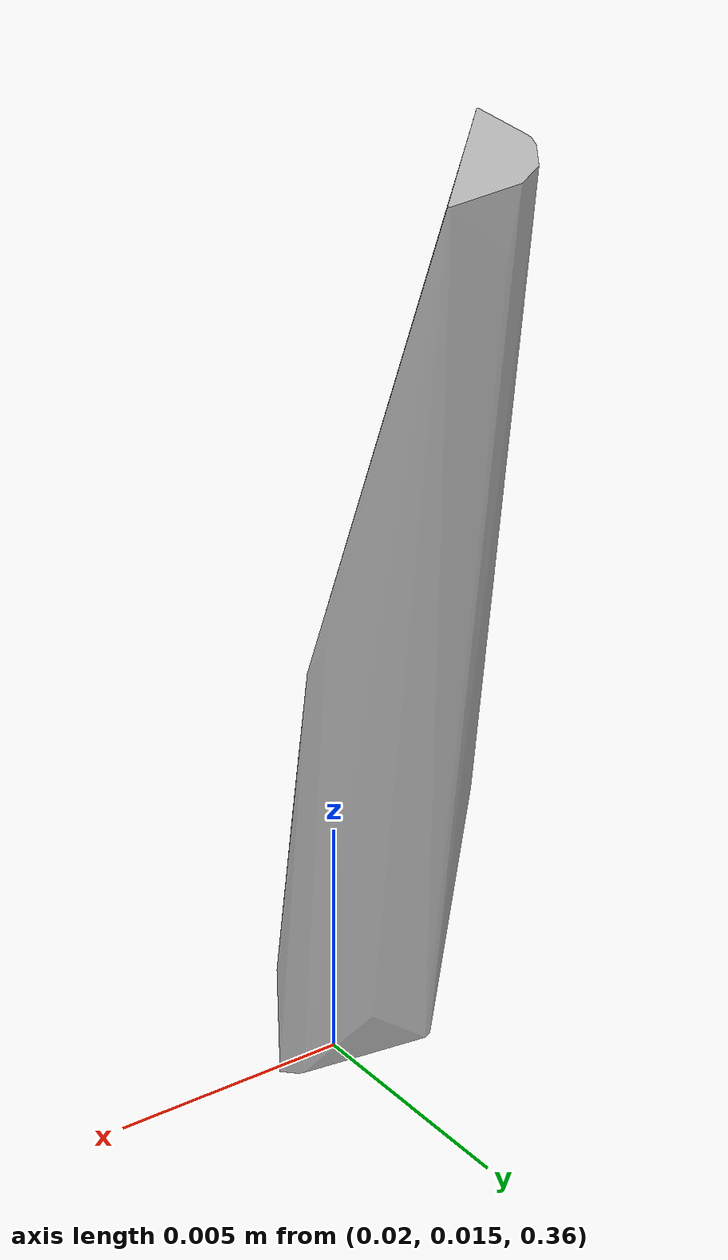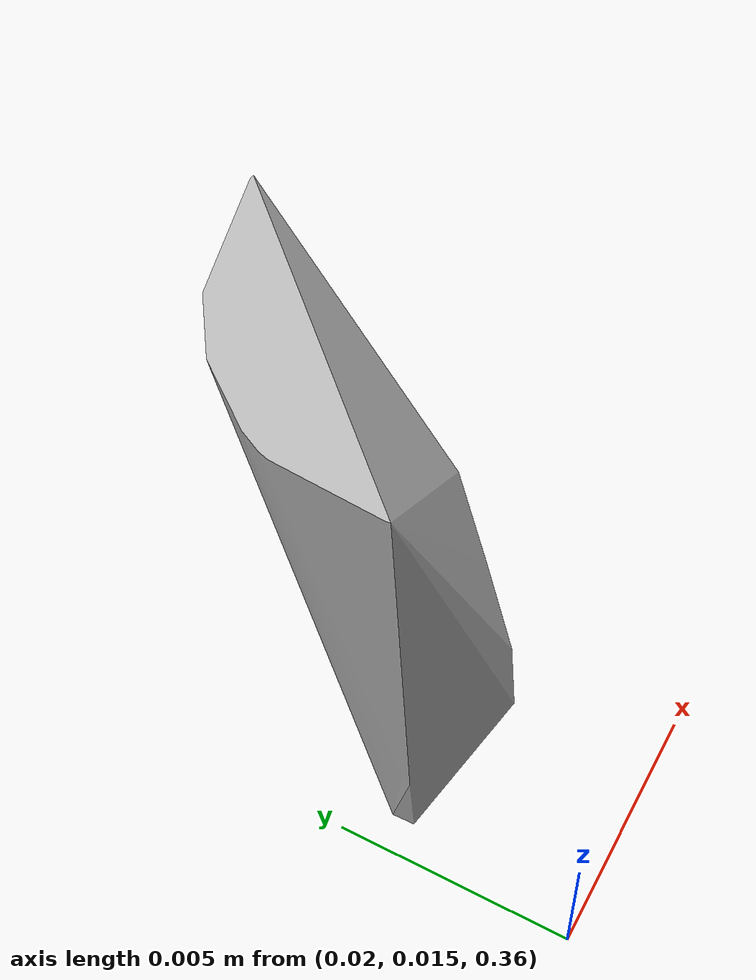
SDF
<?xml version="1.0"?>
<sdf version="1.7">
  <model name="vascular_partexport040">
    <link name="vascular_partexport040_body">
      <visual name="vascular_partexport040_visual">
        <geometry>
          <mesh>
            <uri>vascular_partexport040.obj</uri>
          </mesh>
        </geometry>
      </visual>
      <collision name="vascular_partexport040_collision">
        <geometry>
          <mesh>
            <uri>vascular_partexport040.obj</uri>
          </mesh>
        </geometry>
      </collision>
    </link>
    <frame name="vascular_partexport040_center">
      <pose relative_to="vascular_partexport040_body">0 0 0 0 0 0</pose>
    </frame>
  </model>
</sdf>
